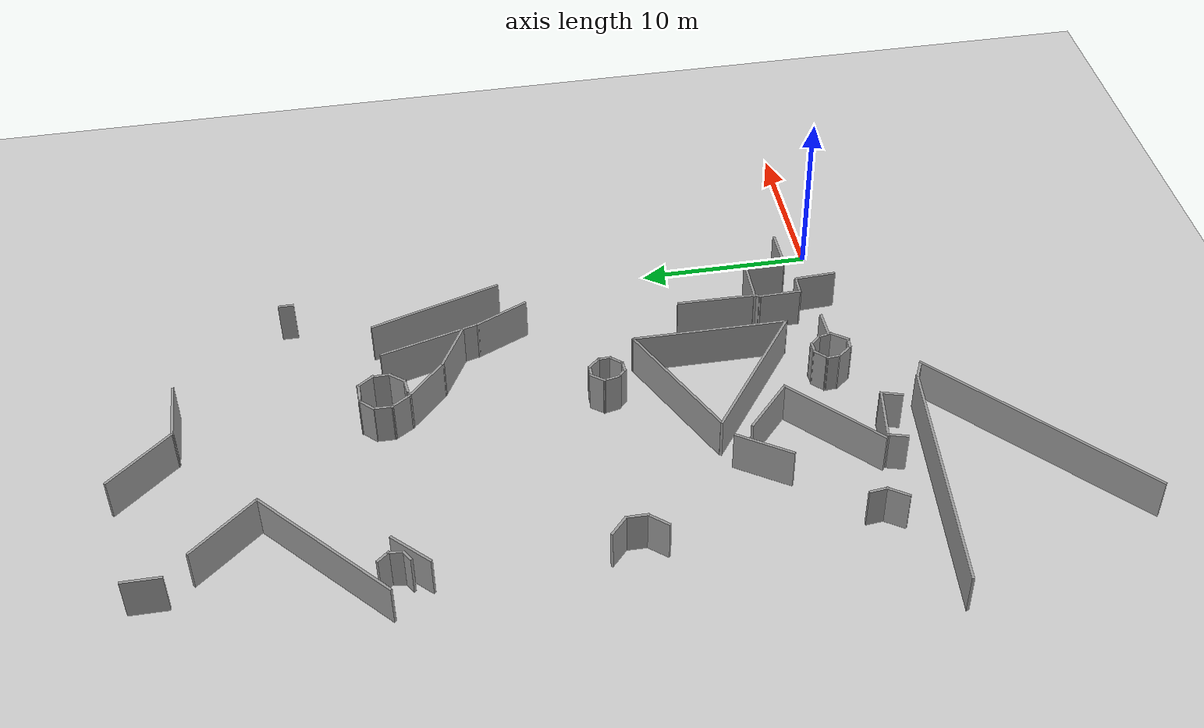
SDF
<sdf version="1.6">
 <world name="default">
  <model name="ground_plane">
   <static>1</static>
   <link name="link">
    <collision name="collision">
     <geometry><plane><normal>0 0 1</normal><size>100 100</size></plane></geometry>
     <surface><friction><ode><mu>100</mu><mu2>50</mu2></ode></friction></surface>
    </collision>
    <visual name="visual">
     <cast_shadows>0</cast_shadows>
     <geometry><plane><normal>0 0 1</normal><size>100 100</size></plane></geometry>
     <material>
      <script><uri>file://media/materials/scripts/gazebo.material</uri><name>Gazebo/Grey</name></script>
     </material>
    </visual>
   </link>
  </model>
  <model name="mall_new_reduce_size">
   <pose>-6.8092 7.5529 0 0 -0 0</pose>
   <link name="Wall_102">
    <collision name="Wall_102_Collision">
     <geometry><box><size>0.911014 0.15 2.5</size></box></geometry>
     <pose>0 0 1.25 0 -0 0</pose>
    </collision>
    <visual name="Wall_102_Visual">
     <pose>0 0 1.25 0 -0 0</pose>
     <geometry><box><size>0.911014 0.15 2.5</size></box></geometry>
     <material>
      <script><uri>file://media/materials/scripts/gazebo.material</uri><name>Gazebo/Grey</name></script>
      <ambient>1 1 1 1</ambient>
     </material>
     <meta><layer>0</layer></meta>
    </visual>
    <pose>5.13908 23.8484 0 0 -0 -1.5708</pose>
   </link>
   <link name="Wall_245">
    <collision name="Wall_245_Collision">
     <geometry><box><size>4.70437 0.15 2.5</size></box></geometry>
     <pose>0 0 1.25 0 -0 0</pose>
    </collision>
    <visual name="Wall_245_Visual">
     <pose>0 0 1.25 0 -0 0</pose>
     <geometry><box><size>4.70437 0.15 2.5</size></box></geometry>
     <material>
      <script><uri>file://media/materials/scripts/gazebo.material</uri><name>Gazebo/Grey</name></script>
      <ambient>1 1 1 1</ambient>
     </material>
     <meta><layer>0</layer></meta>
    </visual>
    <pose>1.30808 -0.867008 0 0 -0 -1.58931</pose>
   </link>
   <link name="Wall_246">
    <collision name="Wall_246_Collision">
     <geometry><box><size>0.40844 0.15 2.5</size></box></geometry>
     <pose>0 0 1.25 0 -0 0</pose>
    </collision>
    <visual name="Wall_246_Visual">
     <pose>0 0 1.25 0 -0 0</pose>
     <geometry><box><size>0.40844 0.15 2.5</size></box></geometry>
     <material>
      <script><uri>file://media/materials/scripts/gazebo.material</uri><name>Gazebo/Grey</name></script>
      <ambient>1 1 1 1</ambient>
     </material>
     <meta><layer>0</layer></meta>
    </visual>
    <pose>1.19003 -3.26525 0 0 -0 -2.19847</pose>
   </link>
   <link name="Wall_247">
    <collision name="Wall_247_Collision">
     <geometry><box><size>2.53 0.15 2.5</size></box></geometry>
     <pose>0 0 1.25 0 -0 0</pose>
    </collision>
    <visual name="Wall_247_Visual">
     <pose>0 0 1.25 0 -0 0</pose>
     <geometry><box><size>2.53 0.15 2.5</size></box></geometry>
     <material>
      <script><uri>file://media/materials/scripts/gazebo.material</uri><name>Gazebo/Grey</name></script>
      <ambient>1 1 1 1</ambient>
     </material>
     <meta><layer>0</layer></meta>
    </visual>
    <pose>1.14793 -4.55973 0 0 -0 -1.55658</pose>
   </link>
   <link name="Wall_248">
    <collision name="Wall_248_Collision">
     <geometry><box><size>1.286 0.15 2.5</size></box></geometry>
     <pose>0 0 1.25 0 -0 0</pose>
    </collision>
    <visual name="Wall_248_Visual">
     <pose>0 0 1.25 0 -0 0</pose>
     <geometry><box><size>1.286 0.15 2.5</size></box></geometry>
     <material>
      <script><uri>file://media/materials/scripts/gazebo.material</uri><name>Gazebo/Grey</name></script>
      <ambient>1 1 1 1</ambient>
     </material>
     <meta><layer>0</layer></meta>
    </visual>
    <pose>1.73245 -5.78757 0 0 -0 -0.037153</pose>
   </link>
   <link name="Wall_249">
    <collision name="Wall_249_Collision">
     <geometry><box><size>2.45157 0.15 2.5</size></box></geometry>
     <pose>0 0 1.25 0 -0 0</pose>
    </collision>
    <visual name="Wall_249_Visual">
     <pose>0 0 1.25 0 -0 0</pose>
     <geometry><box><size>2.45157 0.15 2.5</size></box></geometry>
     <material>
      <script><uri>file://media/materials/scripts/gazebo.material</uri><name>Gazebo/Grey</name></script>
      <ambient>1 1 1 1</ambient>
     </material>
     <meta><layer>0</layer></meta>
    </visual>
    <pose>2.35085 -6.98766 0 0 -0 -1.52665</pose>
   </link>
   <link name="Wall_256">
    <collision name="Wall_256_Collision">
     <geometry><box><size>2.39373 0.15 2.5</size></box></geometry>
     <pose>0 0 1.25 0 -0 0</pose>
    </collision>
    <visual name="Wall_256_Visual">
     <pose>0 0 1.25 0 -0 0</pose>
     <geometry><box><size>2.39373 0.15 2.5</size></box></geometry>
     <material>
      <script><uri>file://media/materials/scripts/gazebo.material</uri><name>Gazebo/Grey</name></script>
      <ambient>1 1 1 1</ambient>
     </material>
     <meta><layer>0</layer></meta>
    </visual>
    <pose>5.14271 -5.45702 0 0 -0 -3.13083</pose>
   </link>
   <link name="Wall_257">
    <collision name="Wall_257_Collision">
     <geometry><box><size>2.48743 0.15 2.5</size></box></geometry>
     <pose>0 0 1.25 0 -0 0</pose>
    </collision>
    <visual name="Wall_257_Visual">
     <pose>0 0 1.25 0 -0 0</pose>
     <geometry><box><size>2.48743 0.15 2.5</size></box></geometry>
     <material>
      <script><uri>file://media/materials/scripts/gazebo.material</uri><name>Gazebo/Grey</name></script>
      <ambient>1 1 1 1</ambient>
     </material>
     <meta><layer>0</layer></meta>
    </visual>
    <pose>3.98296 -4.31566 0 0 -0 1.60328</pose>
   </link>
   <link name="Wall_258">
    <collision name="Wall_258_Collision">
     <geometry><box><size>2.86843 0.15 2.5</size></box></geometry>
     <pose>0 0 1.25 0 -0 0</pose>
    </collision>
    <visual name="Wall_258_Visual">
     <pose>0 0 1.25 0 -0 0</pose>
     <geometry><box><size>2.86843 0.15 2.5</size></box></geometry>
     <material>
      <script><uri>file://media/materials/scripts/gazebo.material</uri><name>Gazebo/Grey</name></script>
      <ambient>1 1 1 1</ambient>
     </material>
     <meta><layer>0</layer></meta>
    </visual>
    <pose>2.58612 -3.10264 0 0 -0 3.11933</pose>
   </link>
   <link name="Wall_262">
    <collision name="Wall_262_Collision">
     <geometry><box><size>8.27755 0.15 2.5</size></box></geometry>
     <pose>0 0 1.25 0 -0 0</pose>
    </collision>
    <visual name="Wall_262_Visual">
     <pose>0 0 1.25 0 -0 0</pose>
     <geometry><box><size>8.27755 0.15 2.5</size></box></geometry>
     <material>
      <script><uri>file://media/materials/scripts/gazebo.material</uri><name>Gazebo/Grey</name></script>
      <ambient>1 1 1 1</ambient>
     </material>
     <meta><layer>0</layer></meta>
    </visual>
    <pose>-4.89745 2.80266 0 0 -0 0.439294</pose>
   </link>
   <link name="Wall_263">
    <collision name="Wall_263_Collision">
     <geometry><box><size>9.01306 0.15 2.5</size></box></geometry>
     <pose>0 0 1.25 0 -0 0</pose>
    </collision>
    <visual name="Wall_263_Visual">
     <pose>0 0 1.25 0 -0 0</pose>
     <geometry><box><size>9.01306 0.15 2.5</size></box></geometry>
     <material>
      <script><uri>file://media/materials/scripts/gazebo.material</uri><name>Gazebo/Grey</name></script>
      <ambient>1 1 1 1</ambient>
     </material>
     <meta><layer>0</layer></meta>
    </visual>
    <pose>-1.21952 0.09951 0 0 -0 -1.57583</pose>
   </link>
   <link name="Wall_264">
    <collision name="Wall_264_Collision">
     <geometry><box><size>9.26002 0.15 2.5</size></box></geometry>
     <pose>0 0 1.25 0 -0 0</pose>
    </collision>
    <visual name="Wall_264_Visual">
     <pose>0 0 1.25 0 -0 0</pose>
     <geometry><box><size>9.26002 0.15 2.5</size></box></geometry>
     <material>
      <script><uri>file://media/materials/scripts/gazebo.material</uri><name>Gazebo/Grey</name></script>
      <ambient>1 1 1 1</ambient>
     </material>
     <meta><layer>0</layer></meta>
    </visual>
    <pose>-4.95834 -1.66721 0 0 -0 2.51669</pose>
   </link>
   <link name="Wall_267">
    <collision name="Wall_267_Collision">
     <geometry><box><size>0.820925 0.15 2.5</size></box></geometry>
     <pose>0 0 1.25 0 -0 0</pose>
    </collision>
    <visual name="Wall_267_Visual">
     <pose>0 0 1.25 0 -0 0</pose>
     <geometry><box><size>0.820925 0.15 2.5</size></box></geometry>
     <material>
      <script><uri>file://media/materials/scripts/gazebo.material</uri><name>Gazebo/Grey</name></script>
      <ambient>1 1 1 1</ambient>
     </material>
     <meta><layer>0</layer></meta>
    </visual>
    <pose>-4.64546 -6.23474 0 0 -0 1.67128</pose>
   </link>
   <link name="Wall_268">
    <collision name="Wall_268_Collision">
     <geometry><box><size>1.02099 0.15 2.5</size></box></geometry>
     <pose>0 0 1.25 0 -0 0</pose>
    </collision>
    <visual name="Wall_268_Visual">
     <pose>0 0 1.25 0 -0 0</pose>
     <geometry><box><size>1.02099 0.15 2.5</size></box></geometry>
     <material>
      <script><uri>file://media/materials/scripts/gazebo.material</uri><name>Gazebo/Grey</name></script>
      <ambient>1 1 1 1</ambient>
     </material>
     <meta><layer>0</layer></meta>
    </visual>
    <pose>-4.34926 -5.61512 0 0 -0 0.761586</pose>
   </link>
   <link name="Wall_269">
    <collision name="Wall_269_Collision">
     <geometry><box><size>0.764839 0.15 2.5</size></box></geometry>
     <pose>0 0 1.25 0 -0 0</pose>
    </collision>
    <visual name="Wall_269_Visual">
     <pose>0 0 1.25 0 -0 0</pose>
     <geometry><box><size>0.764839 0.15 2.5</size></box></geometry>
     <material>
      <script><uri>file://media/materials/scripts/gazebo.material</uri><name>Gazebo/Grey</name></script>
      <ambient>1 1 1 1</ambient>
     </material>
     <meta><layer>0</layer></meta>
    </visual>
    <pose>-3.71208 -5.32193 0 0 -0 0.023853</pose>
   </link>
   <link name="Wall_270">
    <collision name="Wall_270_Collision">
     <geometry><box><size>0.937561 0.15 2.5</size></box></geometry>
     <pose>0 0 1.25 0 -0 0</pose>
    </collision>
    <visual name="Wall_270_Visual">
     <pose>0 0 1.25 0 -0 0</pose>
     <geometry><box><size>0.937561 0.15 2.5</size></box></geometry>
     <material>
      <script><uri>file://media/materials/scripts/gazebo.material</uri><name>Gazebo/Grey</name></script>
      <ambient>1 1 1 1</ambient>
     </material>
     <meta><layer>0</layer></meta>
    </visual>
    <pose>-3.13761 -5.61857 0 0 -0 -0.825217</pose>
   </link>
   <link name="Wall_271">
    <collision name="Wall_271_Collision">
     <geometry><box><size>0.841723 0.15 2.5</size></box></geometry>
     <pose>0 0 1.25 0 -0 0</pose>
    </collision>
    <visual name="Wall_271_Visual">
     <pose>0 0 1.25 0 -0 0</pose>
     <geometry><box><size>0.841723 0.15 2.5</size></box></geometry>
     <material>
      <script><uri>file://media/materials/scripts/gazebo.material</uri><name>Gazebo/Grey</name></script>
      <ambient>1 1 1 1</ambient>
     </material>
     <meta><layer>0</layer></meta>
    </visual>
    <pose>-2.79889 -6.26091 0 0 -0 -1.36232</pose>
   </link>
   <link name="Wall_272">
    <collision name="Wall_272_Collision">
     <geometry><box><size>1.2184 0.15 2.5</size></box></geometry>
     <pose>0 0 1.25 0 -0 0</pose>
    </collision>
    <visual name="Wall_272_Visual">
     <pose>0 0 1.25 0 -0 0</pose>
     <geometry><box><size>1.2184 0.15 2.5</size></box></geometry>
     <material>
      <script><uri>file://media/materials/scripts/gazebo.material</uri><name>Gazebo/Grey</name></script>
      <ambient>1 1 1 1</ambient>
     </material>
     <meta><layer>0</layer></meta>
    </visual>
    <pose>-3.04961 -7.02531 0 0 -0 -2.21847</pose>
   </link>
   <link name="Wall_273">
    <collision name="Wall_273_Collision">
     <geometry><box><size>0.777136 0.15 2.5</size></box></geometry>
     <pose>0 0 1.25 0 -0 0</pose>
    </collision>
    <visual name="Wall_273_Visual">
     <pose>0 0 1.25 0 -0 0</pose>
     <geometry><box><size>0.777136 0.15 2.5</size></box></geometry>
     <material>
      <script><uri>file://media/materials/scripts/gazebo.material</uri><name>Gazebo/Grey</name></script>
      <ambient>1 1 1 1</ambient>
     </material>
     <meta><layer>0</layer></meta>
    </visual>
    <pose>-3.68436 -7.41023 0 0 -0 3.05721</pose>
   </link>
   <link name="Wall_274">
    <collision name="Wall_274_Collision">
     <geometry><box><size>1.15435 0.15 2.5</size></box></geometry>
     <pose>0 0 1.25 0 -0 0</pose>
    </collision>
    <visual name="Wall_274_Visual">
     <pose>0 0 1.25 0 -0 0</pose>
     <geometry><box><size>1.15435 0.15 2.5</size></box></geometry>
     <material>
      <script><uri>file://media/materials/scripts/gazebo.material</uri><name>Gazebo/Grey</name></script>
      <ambient>1 1 1 1</ambient>
     </material>
     <meta><layer>0</layer></meta>
    </visual>
    <pose>-4.31455 -7.00602 0 0 -0 2.25587</pose>
   </link>
   <link name="Wall_280">
    <collision name="Wall_280_Collision">
     <geometry><box><size>1.75812 0.15 2.5</size></box></geometry>
     <pose>0 0 1.25 0 -0 0</pose>
    </collision>
    <visual name="Wall_280_Visual">
     <pose>0 0 1.25 0 -0 0</pose>
     <geometry><box><size>1.75812 0.15 2.5</size></box></geometry>
     <material>
      <script><uri>file://media/materials/scripts/gazebo.material</uri><name>Gazebo/Grey</name></script>
      <ambient>1 1 1 1</ambient>
     </material>
     <meta><layer>0</layer></meta>
    </visual>
    <pose>-1.93612 -6.45549 0 0 -0 0.013364</pose>
   </link>
   <link name="Wall_284">
    <collision name="Wall_284_Collision">
     <geometry><box><size>1.3189 0.15 2.5</size></box></geometry>
     <pose>0 0 1.25 0 -0 0</pose>
    </collision>
    <visual name="Wall_284_Visual">
     <pose>0 0 1.25 0 -0 0</pose>
     <geometry><box><size>1.3189 0.15 2.5</size></box></geometry>
     <material>
      <script><uri>file://media/materials/scripts/gazebo.material</uri><name>Gazebo/Grey</name></script>
      <ambient>1 1 1 1</ambient>
     </material>
     <meta><layer>0</layer></meta>
    </visual>
    <pose>-8.11493 -8.61894 0 0 -0 1.26497</pose>
   </link>
   <link name="Wall_285">
    <collision name="Wall_285_Collision">
     <geometry><box><size>3.37777 0.15 2.5</size></box></geometry>
     <pose>0 0 1.25 0 -0 0</pose>
    </collision>
    <visual name="Wall_285_Visual">
     <pose>0 0 1.25 0 -0 0</pose>
     <geometry><box><size>3.37777 0.15 2.5</size></box></geometry>
     <material>
      <script><uri>file://media/materials/scripts/gazebo.material</uri><name>Gazebo/Grey</name></script>
      <ambient>1 1 1 1</ambient>
     </material>
     <meta><layer>0</layer></meta>
    </visual>
    <pose>-9.56079 -7.81441 0 0 -0 2.97862</pose>
   </link>
   <link name="Wall_286">
    <collision name="Wall_286_Collision">
     <geometry><box><size>1.21161 0.15 2.5</size></box></geometry>
     <pose>0 0 1.25 0 -0 0</pose>
    </collision>
    <visual name="Wall_286_Visual">
     <pose>0 0 1.25 0 -0 0</pose>
     <geometry><box><size>1.21161 0.15 2.5</size></box></geometry>
     <material>
      <script><uri>file://media/materials/scripts/gazebo.material</uri><name>Gazebo/Grey</name></script>
      <ambient>1 1 1 1</ambient>
     </material>
     <meta><layer>0</layer></meta>
    </visual>
    <pose>-11.2883 -8.06181 0 0 -0 -1.85667</pose>
   </link>
   <link name="Wall_289">
    <collision name="Wall_289_Collision">
     <geometry><box><size>3.74389 0.15 2.5</size></box></geometry>
     <pose>0 0 1.25 0 -0 0</pose>
    </collision>
    <visual name="Wall_289_Visual">
     <pose>0 0 1.25 0 -0 0</pose>
     <geometry><box><size>3.74389 0.15 2.5</size></box></geometry>
     <material>
      <script><uri>file://media/materials/scripts/gazebo.material</uri><name>Gazebo/Grey</name></script>
      <ambient>1 1 1 1</ambient>
     </material>
     <meta><layer>0</layer></meta>
    </visual>
    <pose>-7.8177 -1.7822 0 0 -0 -0.730552</pose>
   </link>
   <link name="Wall_293">
    <collision name="Wall_293_Collision">
     <geometry><box><size>6.69055 0.15 2.5</size></box></geometry>
     <pose>0 0 1.25 0 -0 0</pose>
    </collision>
    <visual name="Wall_293_Visual">
     <pose>0 0 1.25 0 -0 0</pose>
     <geometry><box><size>6.69055 0.15 2.5</size></box></geometry>
     <material>
      <script><uri>file://media/materials/scripts/gazebo.material</uri><name>Gazebo/Grey</name></script>
      <ambient>1 1 1 1</ambient>
     </material>
     <meta><layer>0</layer></meta>
    </visual>
    <pose>-8.88827 -5.19299 0 0 -0 -2.39885</pose>
   </link>
   <link name="Wall_296">
    <collision name="Wall_296_Collision">
     <geometry><box><size>3.4822 0.15 2.5</size></box></geometry>
     <pose>0 0 1.25 0 -0 0</pose>
    </collision>
    <visual name="Wall_296_Visual">
     <pose>0 0 1.25 0 -0 0</pose>
     <geometry><box><size>3.4822 0.15 2.5</size></box></geometry>
     <material>
      <script><uri>file://media/materials/scripts/gazebo.material</uri><name>Gazebo/Grey</name></script>
      <ambient>1 1 1 1</ambient>
     </material>
     <meta><layer>0</layer></meta>
    </visual>
    <pose>-10.6311 -0.878716 0 0 -0 -2.16478</pose>
   </link>
   <link name="Wall_301">
    <collision name="Wall_301_Collision">
     <geometry><box><size>1.09033 0.15 2.5</size></box></geometry>
     <pose>0 0 1.25 0 -0 0</pose>
    </collision>
    <visual name="Wall_301_Visual">
     <pose>0 0 1.25 0 -0 0</pose>
     <geometry><box><size>1.09033 0.15 2.5</size></box></geometry>
     <material>
      <script><uri>file://media/materials/scripts/gazebo.material</uri><name>Gazebo/Grey</name></script>
      <ambient>1 1 1 1</ambient>
     </material>
     <meta><layer>0</layer></meta>
    </visual>
    <pose>-14.9682 -5.95144 0 0 -0 -1.4636</pose>
   </link>
   <link name="Wall_302">
    <collision name="Wall_302_Collision">
     <geometry><box><size>1.37103 0.15 2.5</size></box></geometry>
     <pose>0 0 1.25 0 -0 0</pose>
    </collision>
    <visual name="Wall_302_Visual">
     <pose>0 0 1.25 0 -0 0</pose>
     <geometry><box><size>1.37103 0.15 2.5</size></box></geometry>
     <material>
      <script><uri>file://media/materials/scripts/gazebo.material</uri><name>Gazebo/Grey</name></script>
      <ambient>1 1 1 1</ambient>
     </material>
     <meta><layer>0</layer></meta>
    </visual>
    <pose>-15.2636 -6.93047 0 0 -0 -2.17283</pose>
   </link>
   <link name="Wall_310">
    <collision name="Wall_310_Collision">
     <geometry><box><size>14.7966 0.15 2.5</size></box></geometry>
     <pose>0 0 1.25 0 -0 0</pose>
    </collision>
    <visual name="Wall_310_Visual">
     <pose>0 0 1.25 0 -0 0</pose>
     <geometry><box><size>14.7966 0.15 2.5</size></box></geometry>
     <material>
      <script><uri>file://media/materials/scripts/gazebo.material</uri><name>Gazebo/Grey</name></script>
      <ambient>1 1 1 1</ambient>
     </material>
     <meta><layer>0</layer></meta>
    </visual>
    <pose>-14.2431 -9.68361 0 0 -0 -0.103547</pose>
   </link>
   <link name="Wall_311">
    <collision name="Wall_311_Collision">
     <geometry><box><size>1.25215 0.15 2.5</size></box></geometry>
     <pose>0 0 1.25 0 -0 0</pose>
    </collision>
    <visual name="Wall_311_Visual">
     <pose>0 0 1.25 0 -0 0</pose>
     <geometry><box><size>1.25215 0.15 2.5</size></box></geometry>
     <material>
      <script><uri>file://media/materials/scripts/gazebo.material</uri><name>Gazebo/Grey</name></script>
      <ambient>1 1 1 1</ambient>
     </material>
     <meta><layer>0</layer></meta>
    </visual>
    <pose>-6.46 -10.6998 0 0 -0 -0.437998</pose>
   </link>
   <link name="Wall_312">
    <collision name="Wall_312_Collision">
     <geometry><box><size>15.0612 0.15 2.5</size></box></geometry>
     <pose>0 0 1.25 0 -0 0</pose>
    </collision>
    <visual name="Wall_312_Visual">
     <pose>0 0 1.25 0 -0 0</pose>
     <geometry><box><size>15.0612 0.15 2.5</size></box></geometry>
     <material>
      <script><uri>file://media/materials/scripts/gazebo.material</uri><name>Gazebo/Grey</name></script>
      <ambient>1 1 1 1</ambient>
     </material>
     <meta><layer>0</layer></meta>
    </visual>
    <pose>-11.548 -15.883 0 0 -0 -2.41791</pose>
   </link>
   <link name="Wall_320">
    <collision name="Wall_320_Collision">
     <geometry><box><size>0.75 0.15 2.5</size></box></geometry>
     <pose>0 0 1.25 0 -0 0</pose>
    </collision>
    <visual name="Wall_320_Visual">
     <pose>0 0 1.25 0 -0 0</pose>
     <geometry><box><size>0.75 0.15 2.5</size></box></geometry>
     <material>
      <script><uri>file://media/materials/scripts/gazebo.material</uri><name>Gazebo/Grey</name></script>
      <ambient>1 1 1 1</ambient>
     </material>
     <meta><layer>0</layer></meta>
    </visual>
    <pose>-3.3723 7.36494 0 0 -0 0</pose>
   </link>
   <link name="Wall_321">
    <collision name="Wall_321_Collision">
     <geometry><box><size>0.996431 0.15 2.5</size></box></geometry>
     <pose>0 0 1.25 0 -0 0</pose>
    </collision>
    <visual name="Wall_321_Visual">
     <pose>0 0 1.25 0 -0 0</pose>
     <geometry><box><size>0.996431 0.15 2.5</size></box></geometry>
     <material>
      <script><uri>file://media/materials/scripts/gazebo.material</uri><name>Gazebo/Grey</name></script>
      <ambient>1 1 1 1</ambient>
     </material>
     <meta><layer>0</layer></meta>
    </visual>
    <pose>-2.78786 7.05157 0 0 -0 -0.833746</pose>
   </link>
   <link name="Wall_322">
    <collision name="Wall_322_Collision">
     <geometry><box><size>0.808487 0.15 2.5</size></box></geometry>
     <pose>0 0 1.25 0 -0 0</pose>
    </collision>
    <visual name="Wall_322_Visual">
     <pose>0 0 1.25 0 -0 0</pose>
     <geometry><box><size>0.808487 0.15 2.5</size></box></geometry>
     <material>
      <script><uri>file://media/materials/scripts/gazebo.material</uri><name>Gazebo/Grey</name></script>
      <ambient>1 1 1 1</ambient>
     </material>
     <meta><layer>0</layer></meta>
    </visual>
    <pose>-2.51788 6.42855 0 0 -0 -1.52686</pose>
   </link>
   <link name="Wall_323">
    <collision name="Wall_323_Collision">
     <geometry><box><size>0.955507 0.15 2.5</size></box></geometry>
     <pose>0 0 1.25 0 -0 0</pose>
    </collision>
    <visual name="Wall_323_Visual">
     <pose>0 0 1.25 0 -0 0</pose>
     <geometry><box><size>0.955507 0.15 2.5</size></box></geometry>
     <material>
      <script><uri>file://media/materials/scripts/gazebo.material</uri><name>Gazebo/Grey</name></script>
      <ambient>1 1 1 1</ambient>
     </material>
     <meta><layer>0</layer></meta>
    </visual>
    <pose>-2.77393 5.81089 0 0 -0 -2.30728</pose>
   </link>
   <link name="Wall_324">
    <collision name="Wall_324_Collision">
     <geometry><box><size>0.751238 0.15 2.5</size></box></geometry>
     <pose>0 0 1.25 0 -0 0</pose>
    </collision>
    <visual name="Wall_324_Visual">
     <pose>0 0 1.25 0 -0 0</pose>
     <geometry><box><size>0.751238 0.15 2.5</size></box></geometry>
     <material>
      <script><uri>file://media/materials/scripts/gazebo.material</uri><name>Gazebo/Grey</name></script>
      <ambient>1 1 1 1</ambient>
     </material>
     <meta><layer>0</layer></meta>
    </visual>
    <pose>-3.34446 5.48841 0 0 -0 -3.09342</pose>
   </link>
   <link name="Wall_325">
    <collision name="Wall_325_Collision">
     <geometry><box><size>0.725352 0.15 2.5</size></box></geometry>
     <pose>0 0 1.25 0 -0 0</pose>
    </collision>
    <visual name="Wall_325_Visual">
     <pose>0 0 1.25 0 -0 0</pose>
     <geometry><box><size>0.725352 0.15 2.5</size></box></geometry>
     <material>
      <script><uri>file://media/materials/scripts/gazebo.material</uri><name>Gazebo/Grey</name></script>
      <ambient>1 1 1 1</ambient>
     </material>
     <meta><layer>0</layer></meta>
    </visual>
    <pose>-3.85498 5.66037 0 0 -0 2.39175</pose>
   </link>
   <link name="Wall_326">
    <collision name="Wall_326_Collision">
     <geometry><box><size>1.06843 0.15 2.5</size></box></geometry>
     <pose>0 0 1.25 0 -0 0</pose>
    </collision>
    <visual name="Wall_326_Visual">
     <pose>0 0 1.25 0 -0 0</pose>
     <geometry><box><size>1.06843 0.15 2.5</size></box></geometry>
     <material>
      <script><uri>file://media/materials/scripts/gazebo.material</uri><name>Gazebo/Grey</name></script>
      <ambient>1 1 1 1</ambient>
     </material>
     <meta><layer>0</layer></meta>
    </visual>
    <pose>-4.18171 6.28601 0 0 -0 1.78347</pose>
   </link>
   <link name="Wall_327">
    <collision name="Wall_327_Collision">
     <geometry><box><size>0.999026 0.15 2.5</size></box></geometry>
     <pose>0 0 1.25 0 -0 0</pose>
    </collision>
    <visual name="Wall_327_Visual">
     <pose>0 0 1.25 0 -0 0</pose>
     <geometry><box><size>0.999026 0.15 2.5</size></box></geometry>
     <material>
      <script><uri>file://media/materials/scripts/gazebo.material</uri><name>Gazebo/Grey</name></script>
      <ambient>1 1 1 1</ambient>
     </material>
     <meta><layer>0</layer></meta>
    </visual>
    <pose>-4.0137 7.04728 0 0 -0 0.8968</pose>
   </link>
   <link name="Wall_331">
    <collision name="Wall_331_Collision">
     <geometry><box><size>1.45443 0.15 2.5</size></box></geometry>
     <pose>0 0 1.25 0 -0 0</pose>
    </collision>
    <visual name="Wall_331_Visual">
     <pose>0 0 1.25 0 -0 0</pose>
     <geometry><box><size>1.45443 0.15 2.5</size></box></geometry>
     <material>
      <script><uri>file://media/materials/scripts/gazebo.material</uri><name>Gazebo/Grey</name></script>
      <ambient>1 1 1 1</ambient>
     </material>
     <meta><layer>0</layer></meta>
    </visual>
    <pose>-15.0144 7.76987 0 0 -0 -0.727873</pose>
   </link>
   <link name="Wall_332">
    <collision name="Wall_332_Collision">
     <geometry><box><size>1.29894 0.15 2.5</size></box></geometry>
     <pose>0 0 1.25 0 -0 0</pose>
    </collision>
    <visual name="Wall_332_Visual">
     <pose>0 0 1.25 0 -0 0</pose>
     <geometry><box><size>1.29894 0.15 2.5</size></box></geometry>
     <material>
      <script><uri>file://media/materials/scripts/gazebo.material</uri><name>Gazebo/Grey</name></script>
      <ambient>1 1 1 1</ambient>
     </material>
     <meta><layer>0</layer></meta>
    </visual>
    <pose>-14.5323 6.75187 0 0 -0 -1.57919</pose>
   </link>
   <link name="Wall_333">
    <collision name="Wall_333_Collision">
     <geometry><box><size>1.40407 0.15 2.5</size></box></geometry>
     <pose>0 0 1.25 0 -0 0</pose>
    </collision>
    <visual name="Wall_333_Visual">
     <pose>0 0 1.25 0 -0 0</pose>
     <geometry><box><size>1.40407 0.15 2.5</size></box></geometry>
     <material>
      <script><uri>file://media/materials/scripts/gazebo.material</uri><name>Gazebo/Grey</name></script>
      <ambient>1 1 1 1</ambient>
     </material>
     <meta><layer>0</layer></meta>
    </visual>
    <pose>-14.9612 5.70636 0 0 -0 -2.29237</pose>
   </link>
   <link name="Wall_47">
    <collision name="Wall_47_Collision">
     <geometry><box><size>2.17492 0.15 2.5</size></box></geometry>
     <pose>0 0 1.25 0 -0 0</pose>
    </collision>
    <visual name="Wall_47_Visual">
     <pose>0 0 1.25 0 -0 0</pose>
     <geometry><box><size>2.17492 0.15 2.5</size></box></geometry>
     <material>
      <script><uri>file://media/materials/scripts/gazebo.material</uri><name>Gazebo/Grey</name></script>
      <ambient>1 1 1 1</ambient>
     </material>
     <meta><layer>0</layer></meta>
    </visual>
    <pose>-14.3927 31.7499 0 0 -0 1.56648</pose>
   </link>
   <link name="Wall_53">
    <collision name="Wall_53_Collision">
     <geometry><box><size>4.7206 0.15 2.5</size></box></geometry>
     <pose>0 0 1.25 0 -0 0</pose>
    </collision>
    <visual name="Wall_53_Visual">
     <pose>0 0 1.25 0 -0 0</pose>
     <geometry><box><size>4.7206 0.15 2.5</size></box></geometry>
     <material>
      <script><uri>file://media/materials/scripts/gazebo.material</uri><name>Gazebo/Grey</name></script>
      <ambient>1 1 1 1</ambient>
     </material>
     <meta><layer>0</layer></meta>
    </visual>
    <pose>-5.84483 31.9838 0 0 -0 -0.834461</pose>
   </link>
   <link name="Wall_54">
    <collision name="Wall_54_Collision">
     <geometry><box><size>3.72999 0.15 2.5</size></box></geometry>
     <pose>0 0 1.25 0 -0 0</pose>
    </collision>
    <visual name="Wall_54_Visual">
     <pose>0 0 1.25 0 -0 0</pose>
     <geometry><box><size>3.72999 0.15 2.5</size></box></geometry>
     <material>
      <script><uri>file://media/materials/scripts/gazebo.material</uri><name>Gazebo/Grey</name></script>
      <ambient>1 1 1 1</ambient>
     </material>
     <meta><layer>0</layer></meta>
    </visual>
    <pose>-2.53762 30.2774 0 0 -0 -0.007328</pose>
   </link>
   <link name="Wall_58">
    <collision name="Wall_58_Collision">
     <geometry><box><size>4.86048 0.15 2.5</size></box></geometry>
     <pose>0 0 1.25 0 -0 0</pose>
    </collision>
    <visual name="Wall_58_Visual">
     <pose>0 0 1.25 0 -0 0</pose>
     <geometry><box><size>4.86048 0.15 2.5</size></box></geometry>
     <material>
      <script><uri>file://media/materials/scripts/gazebo.material</uri><name>Gazebo/Grey</name></script>
      <ambient>1 1 1 1</ambient>
     </material>
     <meta><layer>0</layer></meta>
    </visual>
    <pose>-11.5025 27.6865 0 0 -0 -0.844353</pose>
   </link>
   <link name="Wall_59">
    <collision name="Wall_59_Collision">
     <geometry><box><size>9.7239 0.15 2.5</size></box></geometry>
     <pose>0 0 1.25 0 -0 0</pose>
    </collision>
    <visual name="Wall_59_Visual">
     <pose>0 0 1.25 0 -0 0</pose>
     <geometry><box><size>9.7239 0.15 2.5</size></box></geometry>
     <material>
      <script><uri>file://media/materials/scripts/gazebo.material</uri><name>Gazebo/Grey</name></script>
      <ambient>1 1 1 1</ambient>
     </material>
     <meta><layer>0</layer></meta>
    </visual>
    <pose>-13.5451 22.7671 0 0 -0 -2.42416</pose>
   </link>
   <link name="Wall_63">
    <collision name="Wall_63_Collision">
     <geometry><box><size>2.76682 0.15 2.5</size></box></geometry>
     <pose>0 0 1.25 0 -0 0</pose>
    </collision>
    <visual name="Wall_63_Visual">
     <pose>0 0 1.25 0 -0 0</pose>
     <geometry><box><size>2.76682 0.15 2.5</size></box></geometry>
     <material>
      <script><uri>file://media/materials/scripts/gazebo.material</uri><name>Gazebo/Grey</name></script>
      <ambient>1 1 1 1</ambient>
     </material>
     <meta><layer>0</layer></meta>
    </visual>
    <pose>-14.7009 18.3877 0 0 -0 0.766646</pose>
   </link>
   <link name="Wall_67">
    <collision name="Wall_67_Collision">
     <geometry><box><size>0.75 0.15 2.5</size></box></geometry>
     <pose>0 0 1.25 0 -0 0</pose>
    </collision>
    <visual name="Wall_67_Visual">
     <pose>0 0 1.25 0 -0 0</pose>
     <geometry><box><size>0.75 0.15 2.5</size></box></geometry>
     <material>
      <script><uri>file://media/materials/scripts/gazebo.material</uri><name>Gazebo/Grey</name></script>
      <ambient>1 1 1 1</ambient>
     </material>
     <meta><layer>0</layer></meta>
    </visual>
    <pose>-15.1212 18.5995 0 0 -0 0.523599</pose>
   </link>
   <link name="Wall_68">
    <collision name="Wall_68_Collision">
     <geometry><box><size>0.923783 0.15 2.5</size></box></geometry>
     <pose>0 0 1.25 0 -0 0</pose>
    </collision>
    <visual name="Wall_68_Visual">
     <pose>0 0 1.25 0 -0 0</pose>
     <geometry><box><size>0.923783 0.15 2.5</size></box></geometry>
     <material>
      <script><uri>file://media/materials/scripts/gazebo.material</uri><name>Gazebo/Grey</name></script>
      <ambient>1 1 1 1</ambient>
     </material>
     <meta><layer>0</layer></meta>
    </visual>
    <pose>-14.7977 19.1311 0 0 -0 1.4053</pose>
   </link>
   <link name="Wall_69">
    <collision name="Wall_69_Collision">
     <geometry><box><size>0.920137 0.15 2.5</size></box></geometry>
     <pose>0 0 1.25 0 -0 0</pose>
    </collision>
    <visual name="Wall_69_Visual">
     <pose>0 0 1.25 0 -0 0</pose>
     <geometry><box><size>0.920137 0.15 2.5</size></box></geometry>
     <material>
      <script><uri>file://media/materials/scripts/gazebo.material</uri><name>Gazebo/Grey</name></script>
      <ambient>1 1 1 1</ambient>
     </material>
     <meta><layer>0</layer></meta>
    </visual>
    <pose>-14.9845 19.7936 0 0 -0 2.27931</pose>
   </link>
   <link name="Wall_75">
    <collision name="Wall_75_Collision">
     <geometry><box><size>0.996724 0.15 2.5</size></box></geometry>
     <pose>0 0 1.25 0 -0 0</pose>
    </collision>
    <visual name="Wall_75_Visual">
     <pose>0 0 1.25 0 -0 0</pose>
     <geometry><box><size>0.996724 0.15 2.5</size></box></geometry>
     <material>
      <script><uri>file://media/materials/scripts/gazebo.material</uri><name>Gazebo/Grey</name></script>
      <ambient>1 1 1 1</ambient>
     </material>
     <meta><layer>0</layer></meta>
    </visual>
    <pose>-2.811 17.5721 0 0 -0 0.113209</pose>
   </link>
   <link name="Wall_76">
    <collision name="Wall_76_Collision">
     <geometry><box><size>1.17578 0.15 2.5</size></box></geometry>
     <pose>0 0 1.25 0 -0 0</pose>
    </collision>
    <visual name="Wall_76_Visual">
     <pose>0 0 1.25 0 -0 0</pose>
     <geometry><box><size>1.17578 0.15 2.5</size></box></geometry>
     <material>
      <script><uri>file://media/materials/scripts/gazebo.material</uri><name>Gazebo/Grey</name></script>
      <ambient>1 1 1 1</ambient>
     </material>
     <meta><layer>0</layer></meta>
    </visual>
    <pose>-2.042 18.0205 0 0 -0 0.869416</pose>
   </link>
   <link name="Wall_77">
    <collision name="Wall_77_Collision">
     <geometry><box><size>1.10885 0.15 2.5</size></box></geometry>
     <pose>0 0 1.25 0 -0 0</pose>
    </collision>
    <visual name="Wall_77_Visual">
     <pose>0 0 1.25 0 -0 0</pose>
     <geometry><box><size>1.10885 0.15 2.5</size></box></geometry>
     <material>
      <script><uri>file://media/materials/scripts/gazebo.material</uri><name>Gazebo/Grey</name></script>
      <ambient>1 1 1 1</ambient>
     </material>
     <meta><layer>0</layer></meta>
    </visual>
    <pose>-1.71974 18.8742 0 0 -0 1.58893</pose>
   </link>
   <link name="Wall_78">
    <collision name="Wall_78_Collision">
     <geometry><box><size>1.20591 0.15 2.5</size></box></geometry>
     <pose>0 0 1.25 0 -0 0</pose>
    </collision>
    <visual name="Wall_78_Visual">
     <pose>0 0 1.25 0 -0 0</pose>
     <geometry><box><size>1.20591 0.15 2.5</size></box></geometry>
     <material>
      <script><uri>file://media/materials/scripts/gazebo.material</uri><name>Gazebo/Grey</name></script>
      <ambient>1 1 1 1</ambient>
     </material>
     <meta><layer>0</layer></meta>
    </visual>
    <pose>-2.02604 19.7599 0 0 -0 2.2101</pose>
   </link>
   <link name="Wall_79">
    <collision name="Wall_79_Collision">
     <geometry><box><size>1.36534 0.15 2.5</size></box></geometry>
     <pose>0 0 1.25 0 -0 0</pose>
    </collision>
    <visual name="Wall_79_Visual">
     <pose>0 0 1.25 0 -0 0</pose>
     <geometry><box><size>1.36534 0.15 2.5</size></box></geometry>
     <material>
      <script><uri>file://media/materials/scripts/gazebo.material</uri><name>Gazebo/Grey</name></script>
      <ambient>1 1 1 1</ambient>
     </material>
     <meta><layer>0</layer></meta>
    </visual>
    <pose>-2.95734 20.1705 0 0 -0 3.13444</pose>
   </link>
   <link name="Wall_80">
    <collision name="Wall_80_Collision">
     <geometry><box><size>1.1209 0.15 2.5</size></box></geometry>
     <pose>0 0 1.25 0 -0 0</pose>
    </collision>
    <visual name="Wall_80_Visual">
     <pose>0 0 1.25 0 -0 0</pose>
     <geometry><box><size>1.1209 0.15 2.5</size></box></geometry>
     <material>
      <script><uri>file://media/materials/scripts/gazebo.material</uri><name>Gazebo/Grey</name></script>
      <ambient>1 1 1 1</ambient>
     </material>
     <meta><layer>0</layer></meta>
    </visual>
    <pose>-3.91038 19.8251 0 0 -0 -2.36253</pose>
   </link>
   <link name="Wall_81">
    <collision name="Wall_81_Collision">
     <geometry><box><size>1.11992 0.15 2.5</size></box></geometry>
     <pose>0 0 1.25 0 -0 0</pose>
    </collision>
    <visual name="Wall_81_Visual">
     <pose>0 0 1.25 0 -0 0</pose>
     <geometry><box><size>1.11992 0.15 2.5</size></box></geometry>
     <material>
      <script><uri>file://media/materials/scripts/gazebo.material</uri><name>Gazebo/Grey</name></script>
      <ambient>1 1 1 1</ambient>
     </material>
     <meta><layer>0</layer></meta>
    </visual>
    <pose>-4.26885 18.9471 0 0 -0 -1.5977</pose>
   </link>
   <link name="Wall_82">
    <collision name="Wall_82_Collision">
     <geometry><box><size>1.37559 0.15 2.5</size></box></geometry>
     <pose>0 0 1.25 0 -0 0</pose>
    </collision>
    <visual name="Wall_82_Visual">
     <pose>0 0 1.25 0 -0 0</pose>
     <geometry><box><size>1.37559 0.15 2.5</size></box></geometry>
     <material>
      <script><uri>file://media/materials/scripts/gazebo.material</uri><name>Gazebo/Grey</name></script>
      <ambient>1 1 1 1</ambient>
     </material>
     <meta><layer>0</layer></meta>
    </visual>
    <pose>-3.93733 17.9642 0 0 -0 -0.973652</pose>
   </link>
   <link name="Wall_83">
    <collision name="Wall_83_Collision">
     <geometry><box><size>3.17702 0.15 2.5</size></box></geometry>
     <pose>0 0 1.25 0 -0 0</pose>
    </collision>
    <visual name="Wall_83_Visual">
     <pose>0 0 1.25 0 -0 0</pose>
     <geometry><box><size>3.17702 0.15 2.5</size></box></geometry>
     <material>
      <script><uri>file://media/materials/scripts/gazebo.material</uri><name>Gazebo/Grey</name></script>
      <ambient>1 1 1 1</ambient>
     </material>
     <meta><layer>0</layer></meta>
    </visual>
    <pose>-2.47787 16.4426 0 0 -0 -0.742728</pose>
   </link>
   <link name="Wall_84">
    <collision name="Wall_84_Collision">
     <geometry><box><size>3.09961 0.15 2.5</size></box></geometry>
     <pose>0 0 1.25 0 -0 0</pose>
    </collision>
    <visual name="Wall_84_Visual">
     <pose>0 0 1.25 0 -0 0</pose>
     <geometry><box><size>3.09961 0.15 2.5</size></box></geometry>
     <material>
      <script><uri>file://media/materials/scripts/gazebo.material</uri><name>Gazebo/Grey</name></script>
      <ambient>1 1 1 1</ambient>
     </material>
     <meta><layer>0</layer></meta>
    </visual>
    <pose>-0.052404 14.7261 0 0 -0 -0.489119</pose>
   </link>
   <link name="Wall_87">
    <collision name="Wall_87_Collision">
     <geometry><box><size>5.96136 0.15 2.5</size></box></geometry>
     <pose>0 0 1.25 0 -0 0</pose>
    </collision>
    <visual name="Wall_87_Visual">
     <pose>0 0 1.25 0 -0 0</pose>
     <geometry><box><size>5.96136 0.15 2.5</size></box></geometry>
     <material>
      <script><uri>file://media/materials/scripts/gazebo.material</uri><name>Gazebo/Grey</name></script>
      <ambient>1 1 1 1</ambient>
     </material>
     <meta><layer>0</layer></meta>
    </visual>
    <pose>0.791494 15.9362 0 0 -0 -1.29247</pose>
   </link>
   <link name="Wall_88">
    <collision name="Wall_88_Collision">
     <geometry><box><size>3.37715 0.15 2.5</size></box></geometry>
     <pose>0 0 1.25 0 -0 0</pose>
    </collision>
    <visual name="Wall_88_Visual">
     <pose>0 0 1.25 0 -0 0</pose>
     <geometry><box><size>3.37715 0.15 2.5</size></box></geometry>
     <material>
      <script><uri>file://media/materials/scripts/gazebo.material</uri><name>Gazebo/Grey</name></script>
      <ambient>1 1 1 1</ambient>
     </material>
     <meta><layer>0</layer></meta>
    </visual>
    <pose>2.28271 11.662 0 0 -0 -1.12695</pose>
   </link>
   <link name="Wall_91">
    <collision name="Wall_91_Collision">
     <geometry><box><size>7.96646 0.15 2.5</size></box></geometry>
     <pose>0 0 1.25 0 -0 0</pose>
    </collision>
    <visual name="Wall_91_Visual">
     <pose>0 0 1.25 0 -0 0</pose>
     <geometry><box><size>7.96646 0.15 2.5</size></box></geometry>
     <material>
      <script><uri>file://media/materials/scripts/gazebo.material</uri><name>Gazebo/Grey</name></script>
      <ambient>1 1 1 1</ambient>
     </material>
     <meta><layer>0</layer></meta>
    </visual>
    <pose>3.59702 15.3339 0 0 -0 -1.25918</pose>
   </link>
   <static>1</static>
  </model>
  <model name="bookshelf_15">
   <static>1</static>
   <link name="link">
    <inertial><mass>1</mass></inertial>
    <collision name="back">
     <pose>0 0.005 0.6 0 -0 0</pose>
     <geometry><box><size>0.9 0.01 1.2</size></box></geometry>
    </collision>
    <visual name="visual1">
     <pose>0 0.005 0.6 0 -0 0</pose>
     <geometry><box><size>0.9 0.01 1.2</size></box></geometry>
     <material>
      <script><uri>file://media/materials/scripts/gazebo.material</uri><name>Gazebo/Wood</name></script>
     </material>
    </visual>
    <collision name="left_side">
     <pose>0.45 -0.195 0.6 0 -0 0</pose>
     <geometry><box><size>0.02 0.4 1.2</size></box></geometry>
    </collision>
    <visual name="visual2">
     <pose>0.45 -0.195 0.6 0 -0 0</pose>
     <geometry><box><size>0.02 0.4 1.2</size></box></geometry>
     <material>
      <script><uri>file://media/materials/scripts/gazebo.material</uri><name>Gazebo/Wood</name></script>
     </material>
    </visual>
    <collision name="right_side">
     <pose>-0.45 -0.195 0.6 0 -0 0</pose>
     <geometry><box><size>0.02 0.4 1.2</size></box></geometry>
    </collision>
    <visual name="visual3">
     <pose>-0.45 -0.195 0.6 0 -0 0</pose>
     <geometry><box><size>0.02 0.4 1.2</size></box></geometry>
     <material>
      <script><uri>file://media/materials/scripts/gazebo.material</uri><name>Gazebo/Wood</name></script>
     </material>
    </visual>
    <collision name="bottom">
     <pose>0 -0.195 0.03 0 -0 0</pose>
     <geometry><box><size>0.88 0.4 0.06</size></box></geometry>
    </collision>
    <visual name="visual4">
     <pose>0 -0.195 0.03 0 -0 0</pose>
     <geometry><box><size>0.88 0.4 0.06</size></box></geometry>
     <material>
      <script><uri>file://media/materials/scripts/gazebo.material</uri><name>Gazebo/Wood</name></script>
     </material>
    </visual>
    <collision name="top">
     <pose>0 -0.195 1.19 0 -0 0</pose>
     <geometry><box><size>0.88 0.4 0.02</size></box></geometry>
    </collision>
    <visual name="visual5">
     <pose>0 -0.195 1.19 0 -0 0</pose>
     <geometry><box><size>0.88 0.4 0.02</size></box></geometry>
     <material>
      <script><uri>file://media/materials/scripts/gazebo.material</uri><name>Gazebo/Wood</name></script>
     </material>
    </visual>
    <collision name="low_shelf">
     <pose>0 -0.195 0.43 0 -0 0</pose>
     <geometry><box><size>0.88 0.4 0.02</size></box></geometry>
    </collision>
    <visual name="visual6">
     <pose>0 -0.195 0.43 0 -0 0</pose>
     <geometry><box><size>0.88 0.4 0.02</size></box></geometry>
     <material>
      <script><uri>file://media/materials/scripts/gazebo.material</uri><name>Gazebo/Wood</name></script>
     </material>
    </visual>
    <collision name="high_shelf">
     <pose>0 -0.195 0.8 0 -0 0</pose>
     <geometry><box><size>0.88 0.4 0.02</size></box></geometry>
    </collision>
    <visual name="visual7">
     <pose>0 -0.195 0.8 0 -0 0</pose>
     <geometry><box><size>0.88 0.4 0.02</size></box></geometry>
     <material>
      <script><uri>file://media/materials/scripts/gazebo.material</uri><name>Gazebo/Wood</name></script>
     </material>
    </visual>
   </link>
   <pose>-21.1187 14.1731 0 0 -0 1.57462</pose>
  </model>
  <model name="bookshelf_16">
   <static>1</static>
   <link name="link">
    <inertial><mass>1</mass></inertial>
    <collision name="back">
     <pose>0 0.005 0.6 0 -0 0</pose>
     <geometry><box><size>0.9 0.01 1.2</size></box></geometry>
    </collision>
    <visual name="visual1">
     <pose>0 0.005 0.6 0 -0 0</pose>
     <geometry><box><size>0.9 0.01 1.2</size></box></geometry>
     <material>
      <script><uri>file://media/materials/scripts/gazebo.material</uri><name>Gazebo/Wood</name></script>
     </material>
    </visual>
    <collision name="left_side">
     <pose>0.45 -0.195 0.6 0 -0 0</pose>
     <geometry><box><size>0.02 0.4 1.2</size></box></geometry>
    </collision>
    <visual name="visual2">
     <pose>0.45 -0.195 0.6 0 -0 0</pose>
     <geometry><box><size>0.02 0.4 1.2</size></box></geometry>
     <material>
      <script><uri>file://media/materials/scripts/gazebo.material</uri><name>Gazebo/Wood</name></script>
     </material>
    </visual>
    <collision name="right_side">
     <pose>-0.45 -0.195 0.6 0 -0 0</pose>
     <geometry><box><size>0.02 0.4 1.2</size></box></geometry>
    </collision>
    <visual name="visual3">
     <pose>-0.45 -0.195 0.6 0 -0 0</pose>
     <geometry><box><size>0.02 0.4 1.2</size></box></geometry>
     <material>
      <script><uri>file://media/materials/scripts/gazebo.material</uri><name>Gazebo/Wood</name></script>
     </material>
    </visual>
    <collision name="bottom">
     <pose>0 -0.195 0.03 0 -0 0</pose>
     <geometry><box><size>0.88 0.4 0.06</size></box></geometry>
    </collision>
    <visual name="visual4">
     <pose>0 -0.195 0.03 0 -0 0</pose>
     <geometry><box><size>0.88 0.4 0.06</size></box></geometry>
     <material>
      <script><uri>file://media/materials/scripts/gazebo.material</uri><name>Gazebo/Wood</name></script>
     </material>
    </visual>
    <collision name="top">
     <pose>0 -0.195 1.19 0 -0 0</pose>
     <geometry><box><size>0.88 0.4 0.02</size></box></geometry>
    </collision>
    <visual name="visual5">
     <pose>0 -0.195 1.19 0 -0 0</pose>
     <geometry><box><size>0.88 0.4 0.02</size></box></geometry>
     <material>
      <script><uri>file://media/materials/scripts/gazebo.material</uri><name>Gazebo/Wood</name></script>
     </material>
    </visual>
    <collision name="low_shelf">
     <pose>0 -0.195 0.43 0 -0 0</pose>
     <geometry><box><size>0.88 0.4 0.02</size></box></geometry>
    </collision>
    <visual name="visual6">
     <pose>0 -0.195 0.43 0 -0 0</pose>
     <geometry><box><size>0.88 0.4 0.02</size></box></geometry>
     <material>
      <script><uri>file://media/materials/scripts/gazebo.material</uri><name>Gazebo/Wood</name></script>
     </material>
    </visual>
    <collision name="high_shelf">
     <pose>0 -0.195 0.8 0 -0 0</pose>
     <geometry><box><size>0.88 0.4 0.02</size></box></geometry>
    </collision>
    <visual name="visual7">
     <pose>0 -0.195 0.8 0 -0 0</pose>
     <geometry><box><size>0.88 0.4 0.02</size></box></geometry>
     <material>
      <script><uri>file://media/materials/scripts/gazebo.material</uri><name>Gazebo/Wood</name></script>
     </material>
    </visual>
   </link>
   <pose>-5.12092 7.51403 0 0 -0 1.32927</pose>
  </model>
 </world>
</sdf>
